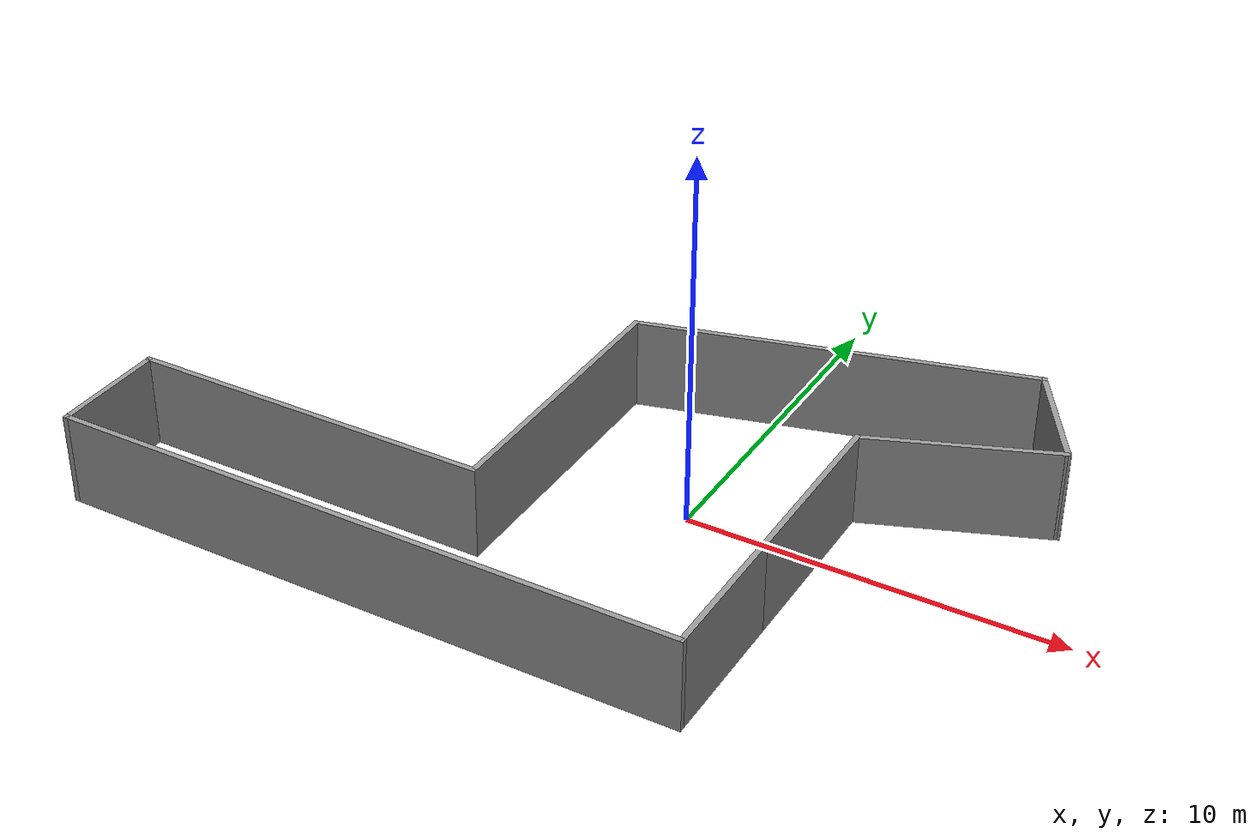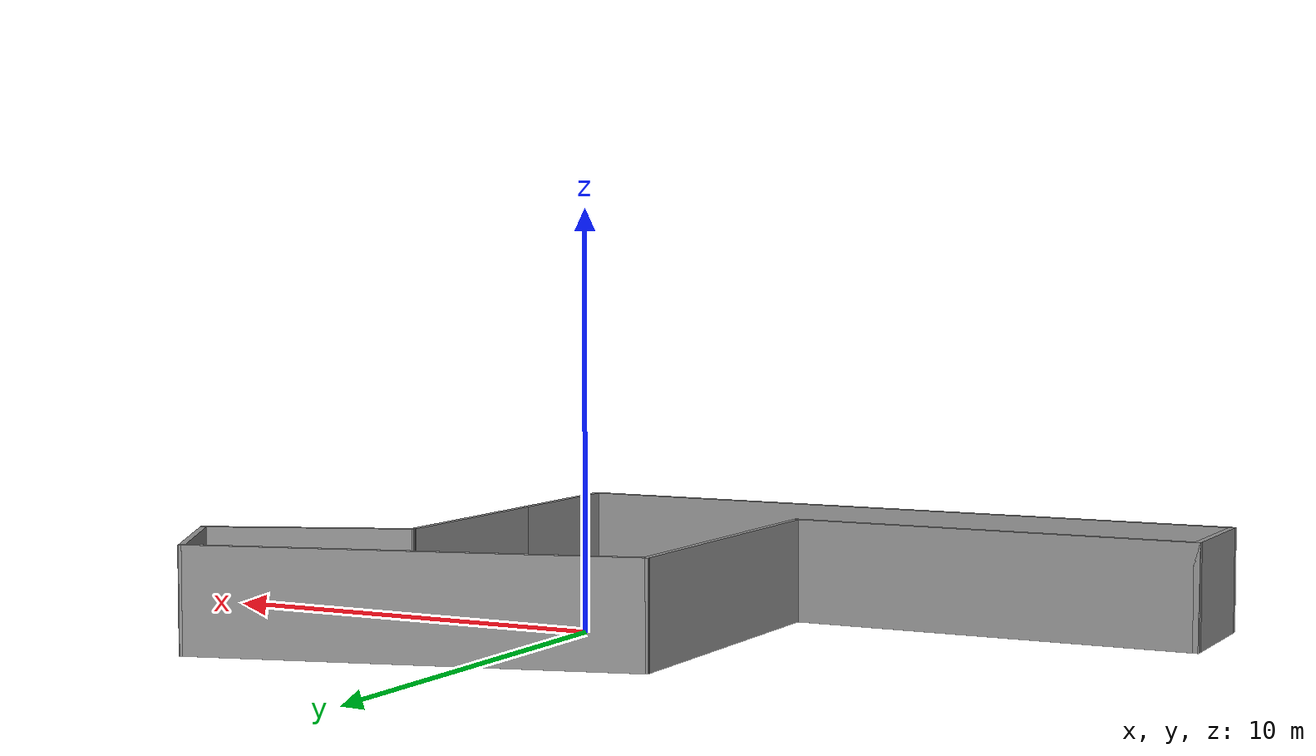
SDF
<?xml version='1.0'?>
<sdf version='1.6'>
  <model name='my_room'>
    <pose frame=''>-2.69437 -0.049533 0 0 -0 0</pose>
    <link name='Wall_0'>
      <collision name='Wall_0_Collision'>
        <geometry>
          <box>
            <size>5.25 0.15 2.5</size>
          </box>
        </geometry>
        <pose frame=''>0 0 1.25 0 -0 0</pose>
      </collision>
      <visual name='Wall_0_Visual'>
        <pose frame=''>0 0 1.25 0 -0 0</pose>
        <geometry>
          <box>
            <size>5.25 0.15 2.5</size>
          </box>
        </geometry>
        <material>
          <script>
            <uri>file://media/materials/scripts/gazebo.material</uri>
            <name>Gazebo/Grey</name>
          </script>
          <ambient>1 1 1 1</ambient>
        </material>
        <meta>
          <layer>0</layer>
        </meta>
      </visual>
      <pose frame=''>6.20437 -0.460467 0 0 -0 -1.5708</pose>
    </link>
    <link name='Wall_2'>
      <collision name='Wall_2_Collision'>
        <geometry>
          <box>
            <size>4 0.15 2.5</size>
          </box>
        </geometry>
        <pose frame=''>0 0 1.25 0 -0 0</pose>
      </collision>
      <visual name='Wall_2_Visual'>
        <pose frame=''>0 0 1.25 0 -0 0</pose>
        <geometry>
          <box>
            <size>4 0.15 2.5</size>
          </box>
        </geometry>
        <material>
          <script>
            <uri>file://media/materials/scripts/gazebo.material</uri>
            <name>Gazebo/Grey</name>
          </script>
          <ambient>1 1 1 1</ambient>
        </material>
        <meta>
          <layer>0</layer>
        </meta>
      </visual>
      <pose frame=''>6.20437 -4.93547 0 0 -0 -1.5708</pose>
    </link>
    <link name='Wall_3'>
      <collision name='Wall_3_Collision'>
        <geometry>
          <box>
            <size>17.25 0.15 2.5</size>
          </box>
        </geometry>
        <pose frame=''>0 0 1.25 0 -0 0</pose>
      </collision>
      <visual name='Wall_3_Visual'>
        <pose frame=''>0 0 1.25 0 -0 0</pose>
        <geometry>
          <box>
            <size>17.25 0.15 2.5</size>
          </box>
        </geometry>
        <material>
          <script>
            <uri>file://media/materials/scripts/gazebo.material</uri>
            <name>Gazebo/Grey</name>
          </script>
          <ambient>1 1 1 1</ambient>
        </material>
        <meta>
          <layer>0</layer>
        </meta>
      </visual>
      <pose frame=''>-2.34563 -6.86047 0 0 -0 3.14159</pose>
    </link>
    <link name='Wall_4'>
      <collision name='Wall_4_Collision'>
        <geometry>
          <box>
            <size>3.25 0.15 2.5</size>
          </box>
        </geometry>
        <pose frame=''>0 0 1.25 0 -0 0</pose>
      </collision>
      <visual name='Wall_4_Visual'>
        <pose frame=''>0 0 1.25 0 -0 0</pose>
        <geometry>
          <box>
            <size>3.25 0.15 2.5</size>
          </box>
        </geometry>
        <material>
          <script>
            <uri>file://media/materials/scripts/gazebo.material</uri>
            <name>Gazebo/Grey</name>
          </script>
          <ambient>1 1 1 1</ambient>
        </material>
        <meta>
          <layer>0</layer>
        </meta>
      </visual>
      <pose frame=''>-10.8956 -5.31047 0 0 -0 1.5708</pose>
    </link>
    <link name='Wall_5'>
      <collision name='Wall_5_Collision'>
        <geometry>
          <box>
            <size>10 0.15 2.5</size>
          </box>
        </geometry>
        <pose frame=''>0 0 1.25 0 -0 0</pose>
      </collision>
      <visual name='Wall_5_Visual'>
        <pose frame=''>0 0 1.25 0 -0 0</pose>
        <geometry>
          <box>
            <size>10 0.15 2.5</size>
          </box>
        </geometry>
        <material>
          <script>
            <uri>file://media/materials/scripts/gazebo.material</uri>
            <name>Gazebo/Grey</name>
          </script>
          <ambient>1 1 1 1</ambient>
        </material>
        <meta>
          <layer>0</layer>
        </meta>
      </visual>
      <pose frame=''>-5.97063 -3.76047 0 0 -0 0</pose>
    </link>
    <link name='Wall_6'>
      <collision name='Wall_6_Collision'>
        <geometry>
          <box>
            <size>8 0.15 2.5</size>
          </box>
        </geometry>
        <pose frame=''>0 0 1.25 0 -0 0</pose>
      </collision>
      <visual name='Wall_6_Visual'>
        <pose frame=''>0 0 1.25 0 -0 0</pose>
        <geometry>
          <box>
            <size>8 0.15 2.5</size>
          </box>
        </geometry>
        <material>
          <script>
            <uri>file://media/materials/scripts/gazebo.material</uri>
            <name>Gazebo/Grey</name>
          </script>
          <ambient>1 1 1 1</ambient>
        </material>
        <meta>
          <layer>0</layer>
        </meta>
      </visual>
      <pose frame=''>-1.04563 0.164533 0 0 -0 1.5708</pose>
    </link>
    <link name='Wall_7'>
      <collision name='Wall_7_Collision'>
        <geometry>
          <box>
            <size>10.75 0.15 2.5</size>
          </box>
        </geometry>
        <pose frame=''>0 0 1.25 0 -0 0</pose>
      </collision>
      <visual name='Wall_7_Visual'>
        <pose frame=''>0 0 1.25 0 -0 0</pose>
        <geometry>
          <box>
            <size>10.75 0.15 2.5</size>
          </box>
        </geometry>
        <material>
          <script>
            <uri>file://media/materials/scripts/gazebo.material</uri>
            <name>Gazebo/Grey</name>
          </script>
          <ambient>1 1 1 1</ambient>
        </material>
        <meta>
          <layer>0</layer>
        </meta>
      </visual>
      <pose frame=''>4.07377 5.46127 0 0 -0 0.261799</pose>
    </link>
    <link name='Wall_8'>
      <collision name='Wall_8_Collision'>
        <geometry>
          <box>
            <size>3.5 0.15 2.5</size>
          </box>
        </geometry>
        <pose frame=''>0 0 1.25 0 -0 0</pose>
      </collision>
      <visual name='Wall_8_Visual'>
        <pose frame=''>0 0 1.25 0 -0 0</pose>
        <geometry>
          <box>
            <size>3.5 0.15 2.5</size>
          </box>
        </geometry>
        <material>
          <script>
            <uri>file://media/materials/scripts/gazebo.material</uri>
            <name>Gazebo/Grey</name>
          </script>
          <ambient>1 1 1 1</ambient>
        </material>
        <meta>
          <layer>0</layer>
        </meta>
      </visual>
      <pose frame=''>10.0307 5.38242 0 0 -0 -1.0472</pose>
    </link>
    <link name='Wall_9'>
      <collision name='Wall_9_Collision'>
        <geometry>
          <box>
            <size>5.1645 0.15 2.5</size>
          </box>
        </geometry>
        <pose frame=''>0 0 1.25 0 -0 0</pose>
      </collision>
      <visual name='Wall_9_Visual'>
        <pose frame=''>0 0 1.25 0 -0 0</pose>
        <geometry>
          <box>
            <size>5.1645 0.15 2.5</size>
          </box>
        </geometry>
        <material>
          <script>
            <uri>file://media/materials/scripts/gazebo.material</uri>
            <name>Gazebo/Grey</name>
          </script>
          <ambient>1 1 1 1</ambient>
        </material>
        <meta>
          <layer>0</layer>
        </meta>
      </visual>
      <pose frame=''>8.53627 3.01068 0 0 -0 -2.76539</pose>
    </link>
    <static>1</static>
  </model>
</sdf>
